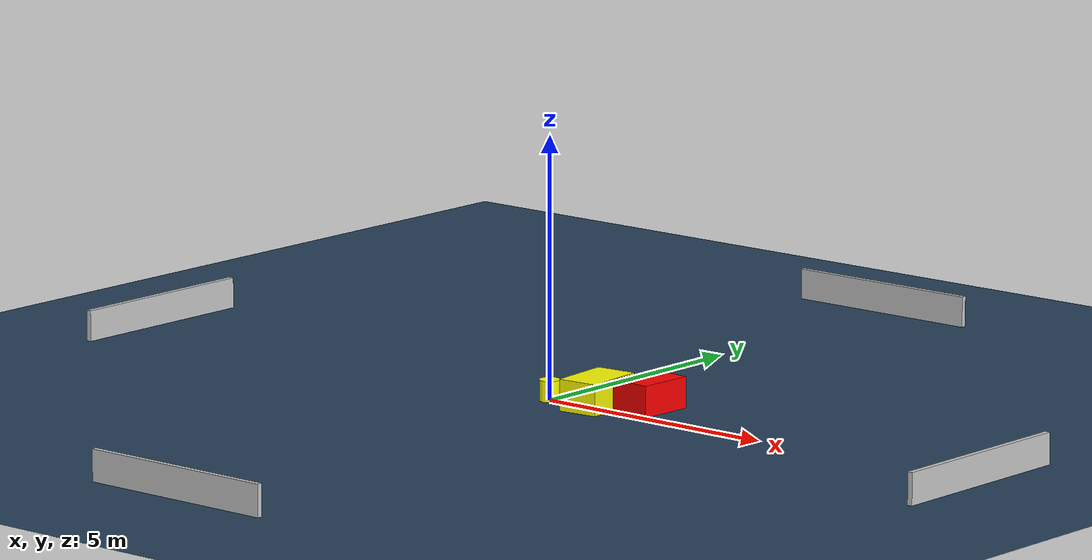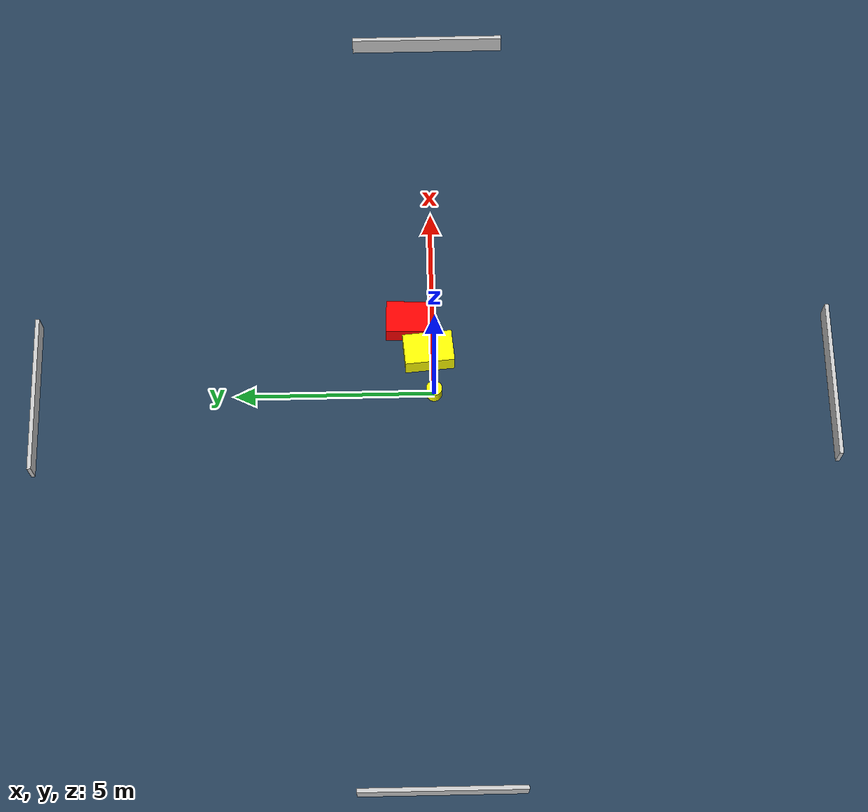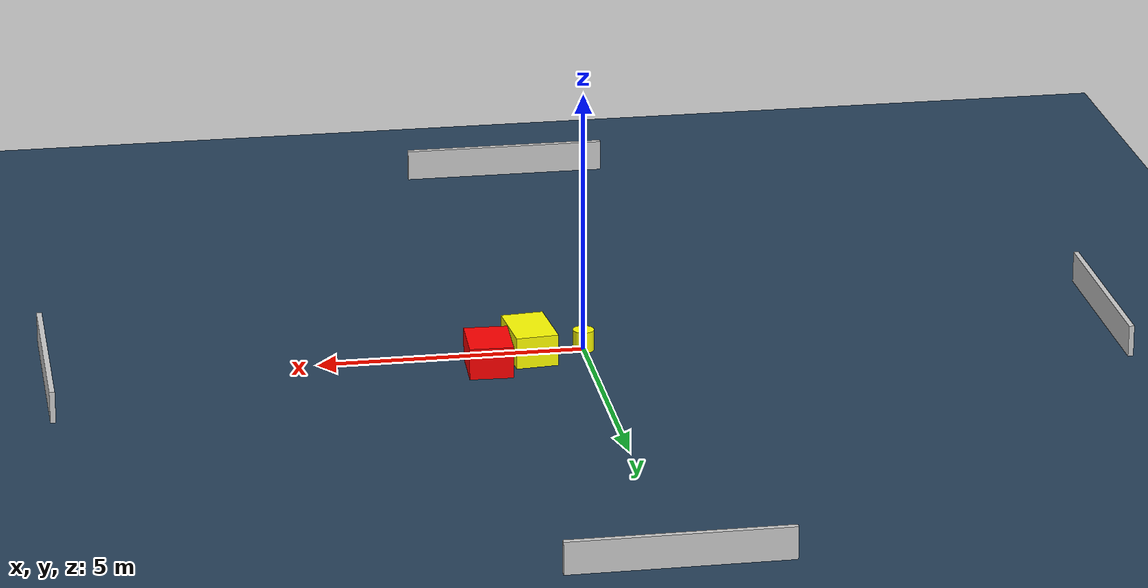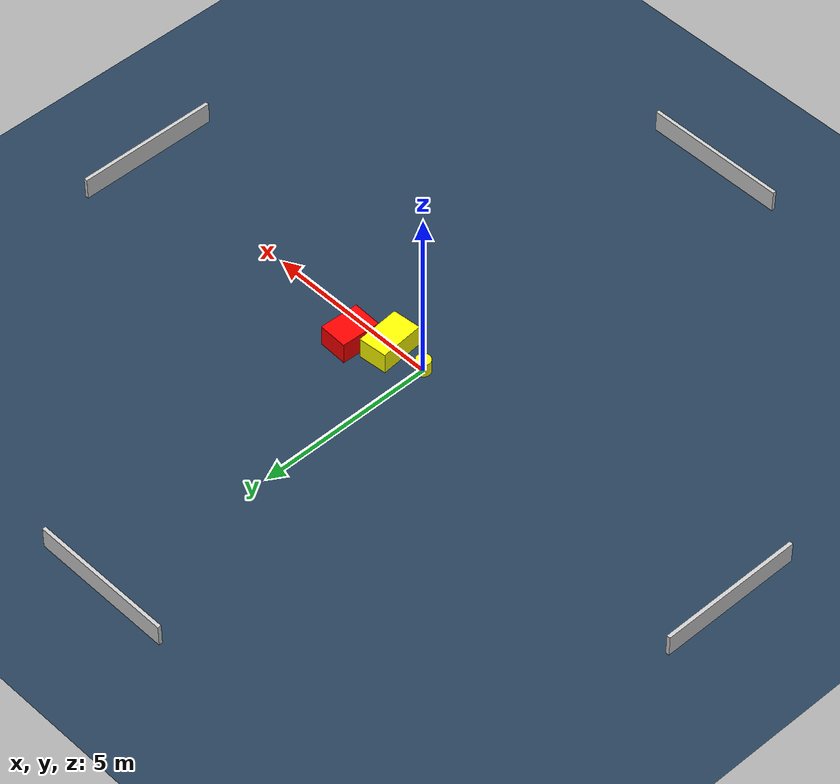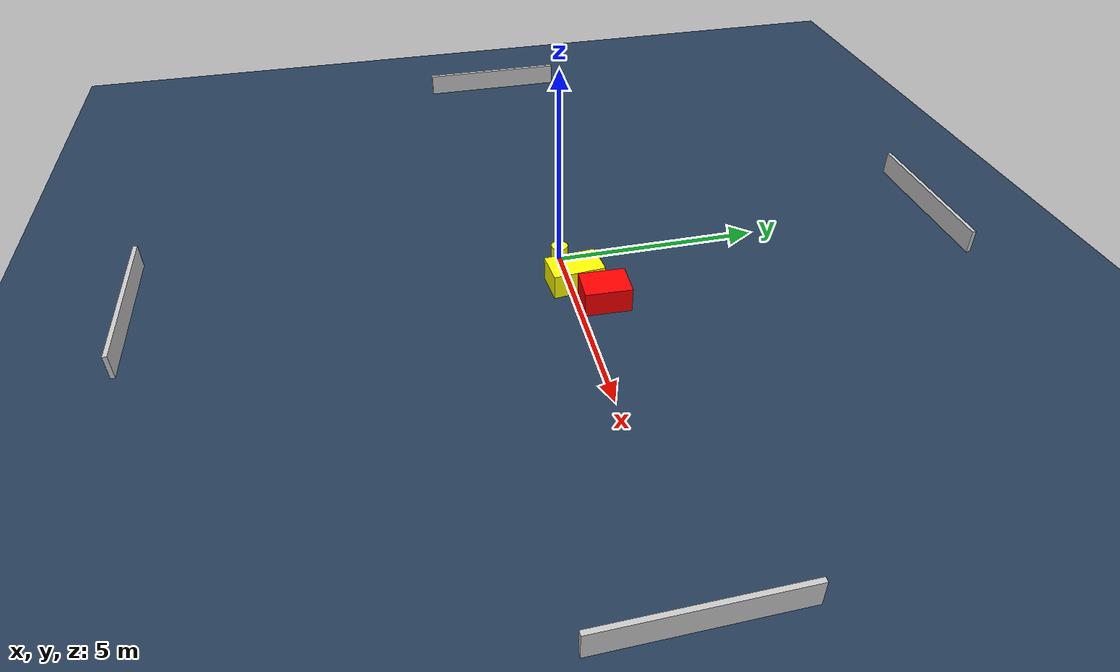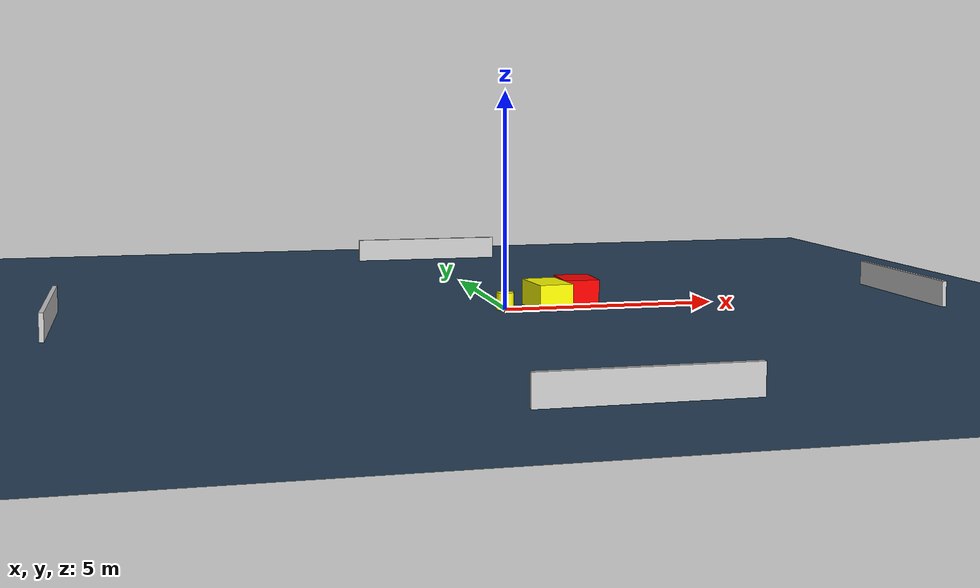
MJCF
<?xml version="1.0" ?>
<mujoco model="generated_environment">
  <option timestep="0.01" integrator="RK4" cone="elliptic"/>
  <default>
    <geom density="1"/>
  </default>
  <asset>
    <texture builtin="gradient" height="3072" name="skybox" rgb1="0.3 0.5 0.7" rgb2="0 0 0" type="skybox" width="512"/>
    <texture builtin="checker" height="300" name="groundplane" rgb1="0.2 0.3 0.4" rgb2="0.1 0.2 0.3" type="2d" width="300"/>
    <material name="groundplane" reflectance="0.2" texrepeat="5 5" texture="groundplane"/>
  </asset>
  <worldbody>
    <light dir="0 0 -1" directional="true" pos="0 0 1.5"/>
    <geom condim="3" friction="0.5 0.005 0.001" material="groundplane" name="floor" pos="0 0 0" size="0 0 0.05" type="plane"/>
    <body name="walls">
      <geom name="wall_1" condim="4" pos="-10.0 0.0 0.3" rgba="0.800000011920929 0.800000011920929 0.800000011920929 1.0" size="0.05 2.0 0.3" type="box"/>
      <geom name="wall_2" condim="4" pos="10.0 0.0 0.3" rgba="0.800000011920929 0.800000011920929 0.800000011920929 1.0" size="0.05 2.0 0.3" type="box"/>
      <geom name="wall_3" condim="4" pos="0.0 -10.0 0.3" rgba="0.800000011920929 0.800000011920929 0.800000011920929 1.0" size="2.0 0.05 0.3" type="box"/>
      <geom name="wall_4" condim="4" pos="0.0 10.0 0.3" rgba="0.800000011920929 0.800000011920929 0.800000011920929 1.0" size="2.0 0.05 0.3" type="box"/>
    </body>
    <body name="robot">
      <joint name="joint_x" type="slide" pos="0 0 0" axis="1 0 0"/>
      <joint name="joint_y" type="slide" pos="0 0 0" axis="0 1 0"/>
      <geom name="robot" type="cylinder" pos="0.0 0.0 0.2" size="0.2 0.2 0.0" mass="5.0" friction="1.0 0.005 0.0001" condim="4" rgba="1.0 1.0 0.0 1.0"/>
    </body>
    <body name="obstacle_1_movable">
      <geom name="obstacle_1_movable" condim="4" pos="1.0373719149220975 0.12436162570271304 0.3" euler="0 0 275.05544481369856" friction="0.0 0.005 0.001" rgba="1.0 1.0 0.0 1.0" size="0.6221815816057541 0.39989463944744635 0.3" type="box" mass="0.1"/>
      <joint type="free"/>
    </body>
    <body name="obstacle_2_static">
      <geom name="obstacle_2_static" condim="4" pos="1.881923027317689 0.6313809448468396 0.3" euler="0 0 87.80747475683287" friction="0.0 0.005 0.001" rgba="1.0 0.0 0.0 1.0" size="0.5500117192754552 0.4097992324055122 0.3" type="box"/>
    </body>
  </worldbody>
  <actuator>
    <motor name="actuator_x" joint="joint_x" gear="1" ctrlrange="-1 1"/>
    <motor name="actuator_y" joint="joint_y" gear="1" ctrlrange="-1 1"/>
  </actuator>
</mujoco>
